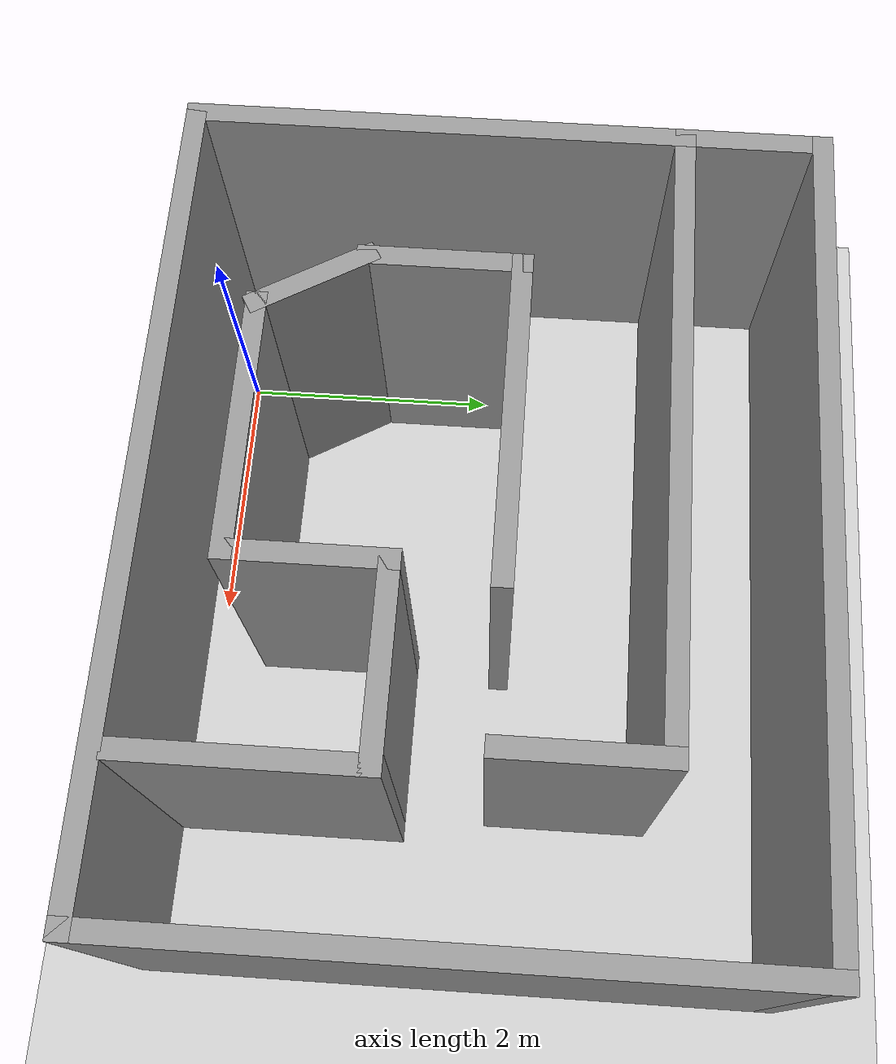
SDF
<sdf version="1.6">
 <world name="default">
  <light name="sun" type="directional">
   <pose>0 0 10 0 -0 0</pose>
   <diffuse>0.8 0.8 0.8 1</diffuse>
   <specular>0.1 0.1 0.1 1</specular>
   <attenuation>
    <range>1000</range>
    <constant>0.9</constant>
    <linear>0.01</linear>
    <quadratic>0.001</quadratic>
   </attenuation>
   <direction>-0.5 0.5 -1</direction>
  </light>
  <model name="ground_plane">
   <static>1</static>
   <link name="link">
    <collision name="collision">
     <geometry><plane><normal>0 0 1</normal><size>100 100</size></plane></geometry>
     <surface><friction><ode><mu>100</mu><mu2>50</mu2></ode></friction></surface>
    </collision>
    <visual name="visual">
     <cast_shadows>0</cast_shadows>
     <geometry><plane><normal>0 0 1</normal><size>100 100</size></plane></geometry>
     <material>
      <script><uri>file://media/materials/scripts/gazebo.material</uri><name>Gazebo/Grey</name></script>
     </material>
    </visual>
   </link>
  </model>
  <gravity>0 0 -9.8</gravity>
  <magnetic_field>6e-06 2.3e-05 -4.2e-05</magnetic_field>
  <atmosphere type="adiabatic"/>
  <physics name="default_physics" default="0" type="ode">
   <max_step_size>0.001</max_step_size>
   <real_time_factor>1</real_time_factor>
   <real_time_update_rate>1000</real_time_update_rate>
  </physics>
  <scene><ambient>0.4 0.4 0.4 1</ambient><background>0.7 0.7 0.7 1</background><shadows>1</shadows></scene>
  <spherical_coordinates>
   <surface_model>EARTH_WGS84</surface_model>
   <latitude_deg>0</latitude_deg>
   <longitude_deg>0</longitude_deg>
   <elevation>0</elevation>
   <heading_deg>0</heading_deg>
  </spherical_coordinates>
  <model name="test">
   <pose>1.92595 2.10504 0 0 -0 0</pose>
   <link name="Wall_0">
    <collision name="Wall_0_Collision">
     <geometry><box><size>3.75 0.15 2.5</size></box></geometry>
     <pose>0 0 1.25 0 -0 0</pose>
    </collision>
    <visual name="Wall_0_Visual">
     <pose>0 0 1.25 0 -0 0</pose>
     <geometry><box><size>3.75 0.15 2.5</size></box></geometry>
     <material>
      <script><uri>file://media/materials/scripts/gazebo.material</uri><name>Gazebo/Grey</name></script>
      <ambient>1 1 1 1</ambient>
     </material>
    </visual>
    <pose>-2.925 -0.5 0 0 0 -1.5708</pose>
   </link>
   <link name="Wall_1">
    <collision name="Wall_1_Collision">
     <geometry><box><size>6 0.15 2.5</size></box></geometry>
     <pose>0 0 1.25 0 -0 0</pose>
    </collision>
    <visual name="Wall_1_Visual">
     <pose>0 0 1.25 0 -0 0</pose>
     <geometry><box><size>6 0.15 2.5</size></box></geometry>
     <material>
      <script><uri>file://media/materials/scripts/gazebo.material</uri><name>Gazebo/Grey</name></script>
      <ambient>1 1 1 1</ambient>
     </material>
    </visual>
    <pose>0 -2.3 0 0 -0 0</pose>
   </link>
   <link name="Wall_10">
    <collision name="Wall_10_Collision">
     <geometry><box><size>1.25 0.15 2.5</size></box></geometry>
     <pose>0 0 1.25 0 -0 0</pose>
    </collision>
    <visual name="Wall_10_Visual">
     <pose>0 0 1.25 0 -0 0</pose>
     <geometry><box><size>1.25 0.15 2.5</size></box></geometry>
     <material>
      <script><uri>file://media/materials/scripts/gazebo.material</uri><name>Gazebo/Grey</name></script>
      <ambient>1 1 1 1</ambient>
     </material>
    </visual>
    <pose>-1.785 -0.38 0 0 0 -1.5708</pose>
   </link>
   <link name="Wall_11">
    <collision name="Wall_11_Collision">
     <geometry><box><size>1 0.15 2.5</size></box></geometry>
     <pose>0 0 1.25 0 -0 0</pose>
    </collision>
    <visual name="Wall_11_Visual">
     <pose>0 0 1.25 0 -0 0</pose>
     <geometry><box><size>1 0.15 2.5</size></box></geometry>
     <material>
      <script><uri>file://media/materials/scripts/gazebo.material</uri><name>Gazebo/Grey</name></script>
      <ambient>1 1 1 1</ambient>
     </material>
    </visual>
    <pose>-1.5725 -1.29806 0 0 0 -1.0472</pose>
   </link>
   <link name="Wall_12">
    <collision name="Wall_12_Collision">
     <geometry><box><size>2 0.15 2.5</size></box></geometry>
     <pose>0 0 1.25 0 -0 0</pose>
    </collision>
    <visual name="Wall_12_Visual">
     <pose>0 0 1.25 0 -0 0</pose>
     <geometry><box><size>2 0.15 2.5</size></box></geometry>
     <material>
      <script><uri>file://media/materials/scripts/gazebo.material</uri><name>Gazebo/Grey</name></script>
      <ambient>1 1 1 1</ambient>
     </material>
    </visual>
    <pose>-0.435 -1.66612 0 0 -0 0</pose>
   </link>
   <link name="Wall_13">
    <collision name="Wall_13_Collision">
     <geometry><box><size>1.25 0.15 2.5</size></box></geometry>
     <pose>0 0 1.25 0 -0 0</pose>
    </collision>
    <visual name="Wall_13_Visual">
     <pose>0 0 1.25 0 -0 0</pose>
     <geometry><box><size>1.25 0.15 2.5</size></box></geometry>
     <material>
      <script><uri>file://media/materials/scripts/gazebo.material</uri><name>Gazebo/Grey</name></script>
      <ambient>1 1 1 1</ambient>
     </material>
    </visual>
    <pose>0.49 -1.11612 0 0 -0 1.5708</pose>
   </link>
   <link name="Wall_14">
    <collision name="Wall_14_Collision">
     <geometry><box><size>1.5 0.15 2.5</size></box></geometry>
     <pose>0 0 1.25 0 -0 0</pose>
    </collision>
    <visual name="Wall_14_Visual">
     <pose>0 0 1.25 0 -0 0</pose>
     <geometry><box><size>1.5 0.15 2.5</size></box></geometry>
     <material>
      <script><uri>file://media/materials/scripts/gazebo.material</uri><name>Gazebo/Grey</name></script>
      <ambient>1 1 1 1</ambient>
     </material>
    </visual>
    <pose>1.165 -0.566122 0 0 -0 0</pose>
   </link>
   <link name="Wall_15">
    <collision name="Wall_15_Collision">
     <geometry><box><size>1.75 0.15 2.5</size></box></geometry>
     <pose>0 0 1.25 0 -0 0</pose>
    </collision>
    <visual name="Wall_15_Visual">
     <pose>0 0 1.25 0 -0 0</pose>
     <geometry><box><size>1.75 0.15 2.5</size></box></geometry>
     <material>
      <script><uri>file://media/materials/scripts/gazebo.material</uri><name>Gazebo/Grey</name></script>
      <ambient>1 1 1 1</ambient>
     </material>
    </visual>
    <pose>1.84 -1.36612 0 0 0 -1.5708</pose>
   </link>
   <link name="Wall_2">
    <collision name="Wall_2_Collision">
     <geometry><box><size>4.75 0.15 2.5</size></box></geometry>
     <pose>0 0 1.25 0 -0 0</pose>
    </collision>
    <visual name="Wall_2_Visual">
     <pose>0 0 1.25 0 -0 0</pose>
     <geometry><box><size>4.75 0.15 2.5</size></box></geometry>
     <material>
      <script><uri>file://media/materials/scripts/gazebo.material</uri><name>Gazebo/Grey</name></script>
      <ambient>1 1 1 1</ambient>
     </material>
    </visual>
    <pose>2.925 0 0 0 -0 1.5708</pose>
   </link>
   <link name="Wall_3">
    <collision name="Wall_3_Collision">
     <geometry><box><size>6 0.15 2.5</size></box></geometry>
     <pose>0 0 1.25 0 -0 0</pose>
    </collision>
    <visual name="Wall_3_Visual">
     <pose>0 0 1.25 0 -0 0</pose>
     <geometry><box><size>6 0.15 2.5</size></box></geometry>
     <material>
      <script><uri>file://media/materials/scripts/gazebo.material</uri><name>Gazebo/Grey</name></script>
      <ambient>1 1 1 1</ambient>
     </material>
    </visual>
    <pose>0 2.3 0 0 -0 3.14159</pose>
   </link>
   <link name="Wall_4">
    <collision name="Wall_4_Collision">
     <geometry><box><size>1.15 0.15 2.5</size></box></geometry>
     <pose>0 0 1.25 0 -0 0</pose>
    </collision>
    <visual name="Wall_4_Visual">
     <pose>0 0 1.25 0 -0 0</pose>
     <geometry><box><size>1.15 0.15 2.5</size></box></geometry>
     <material>
      <script><uri>file://media/materials/scripts/gazebo.material</uri><name>Gazebo/Grey</name></script>
      <ambient>1 1 1 1</ambient>
     </material>
    </visual>
    <pose>-2.925 1.8 0 0 0 -1.5708</pose>
   </link>
   <link name="Wall_5">
    <collision name="Wall_5_Collision">
     <geometry><box><size>4.75 0.15 2.5</size></box></geometry>
     <pose>0 0 1.25 0 -0 0</pose>
    </collision>
    <visual name="Wall_5_Visual">
     <pose>0 0 1.25 0 -0 0</pose>
     <geometry><box><size>4.75 0.15 2.5</size></box></geometry>
     <material>
      <script><uri>file://media/materials/scripts/gazebo.material</uri><name>Gazebo/Grey</name></script>
      <ambient>1 1 1 1</ambient>
     </material>
    </visual>
    <pose>-0.625 1.3 0 0 -0 0</pose>
   </link>
   <link name="Wall_6">
    <collision name="Wall_6_Collision">
     <geometry><box><size>1.25 0.15 2.5</size></box></geometry>
     <pose>0 0 1.25 0 -0 0</pose>
    </collision>
    <visual name="Wall_6_Visual">
     <pose>0 0 1.25 0 -0 0</pose>
     <geometry><box><size>1.25 0.15 2.5</size></box></geometry>
     <material>
      <script><uri>file://media/materials/scripts/gazebo.material</uri><name>Gazebo/Grey</name></script>
      <ambient>1 1 1 1</ambient>
     </material>
    </visual>
    <pose>1.675 0.75 0 0 0 -1.5708</pose>
   </link>
   <link name="Wall_8">
    <collision name="Wall_8_Collision">
     <geometry><box><size>2.5 0.15 2.5</size></box></geometry>
     <pose>0 0 1.25 0 -0 0</pose>
    </collision>
    <visual name="Wall_8_Visual">
     <pose>0 0 1.25 0 -0 0</pose>
     <geometry><box><size>2.5 0.15 2.5</size></box></geometry>
     <material>
      <script><uri>file://media/materials/scripts/gazebo.material</uri><name>Gazebo/Grey</name></script>
      <ambient>1 1 1 1</ambient>
     </material>
    </visual>
    <pose>-0.61 0.17 0 0 -0 0</pose>
   </link>
   <static>1</static>
  </model>
 </world>
</sdf>
